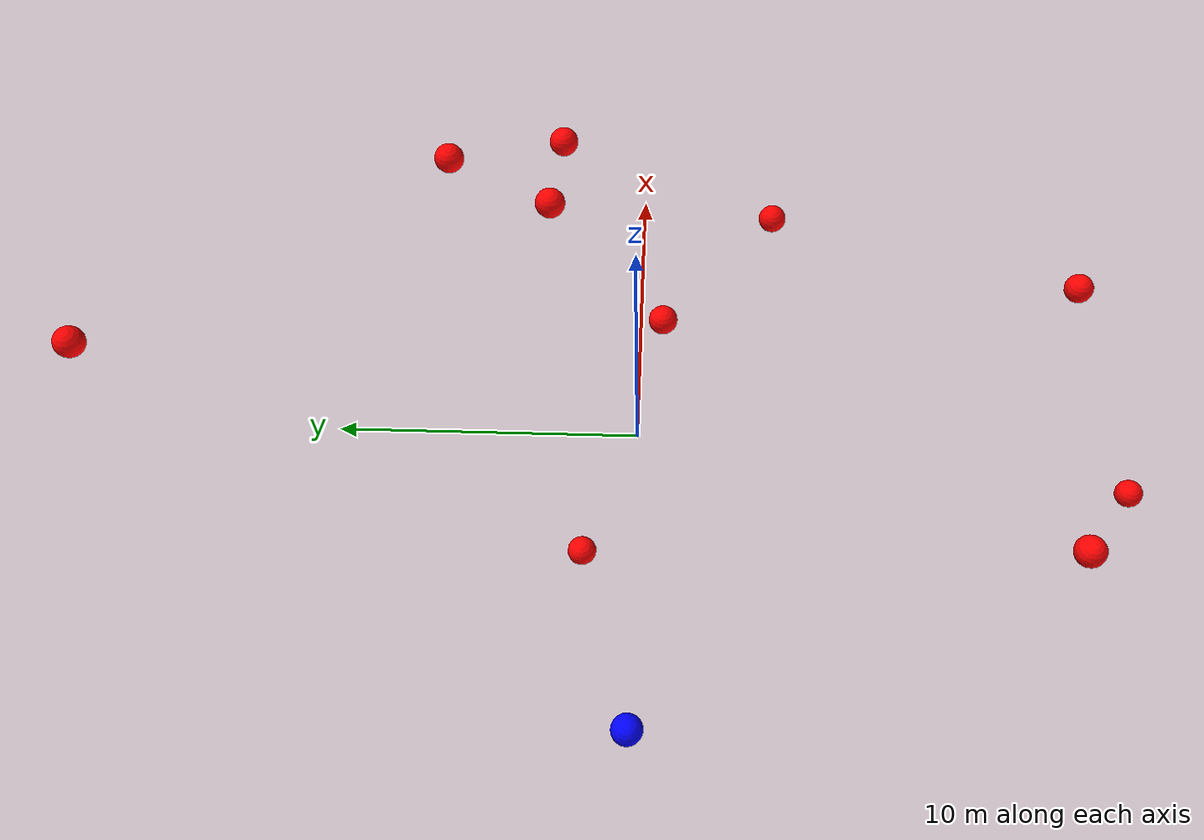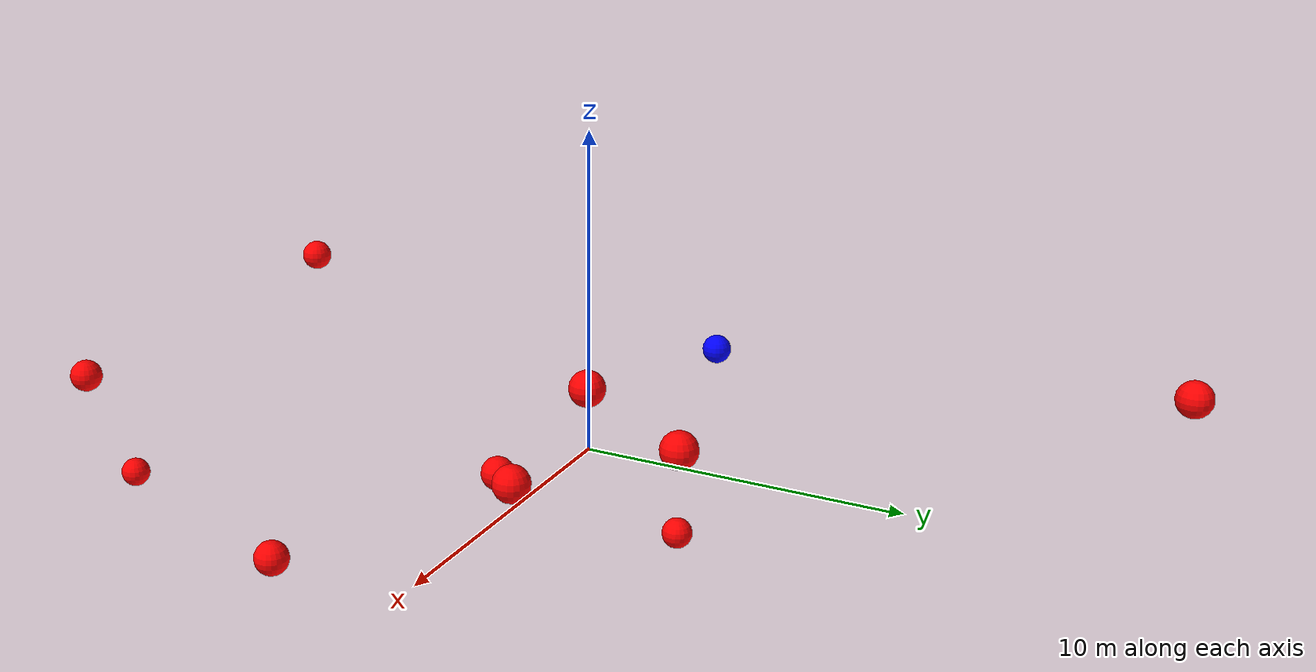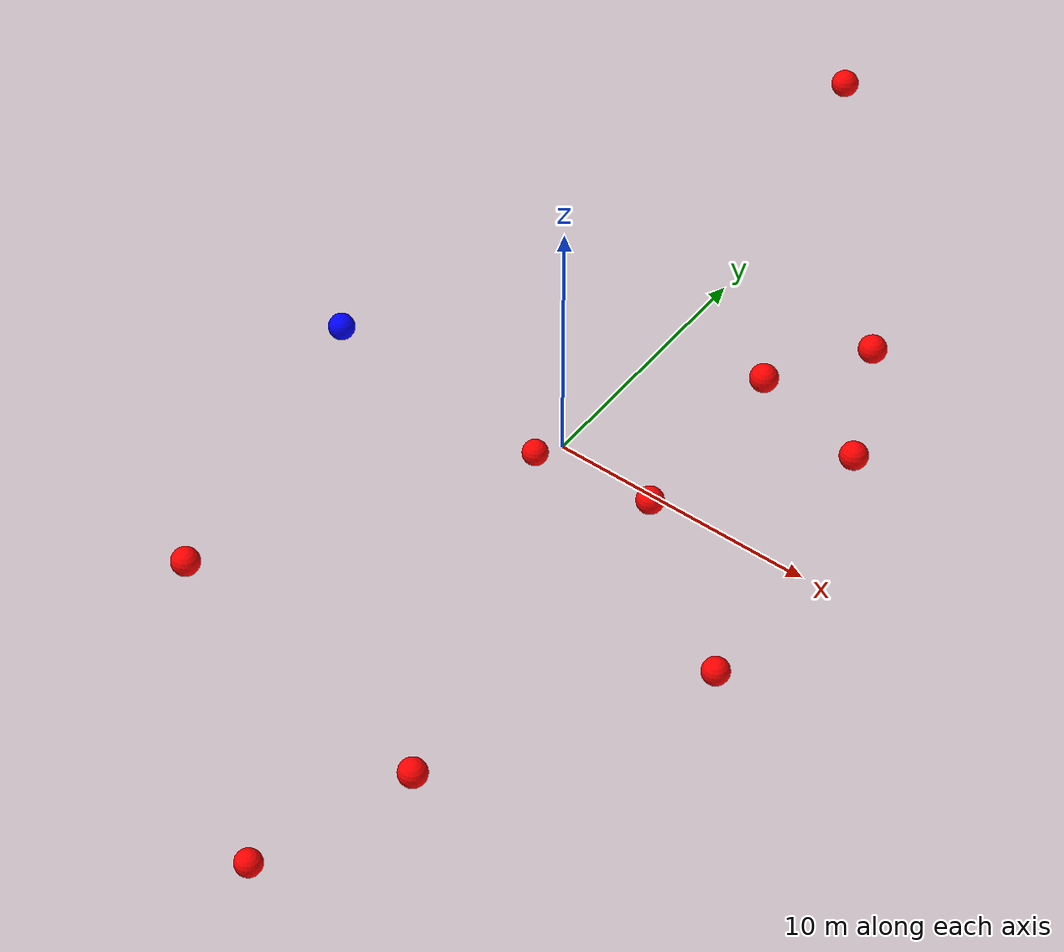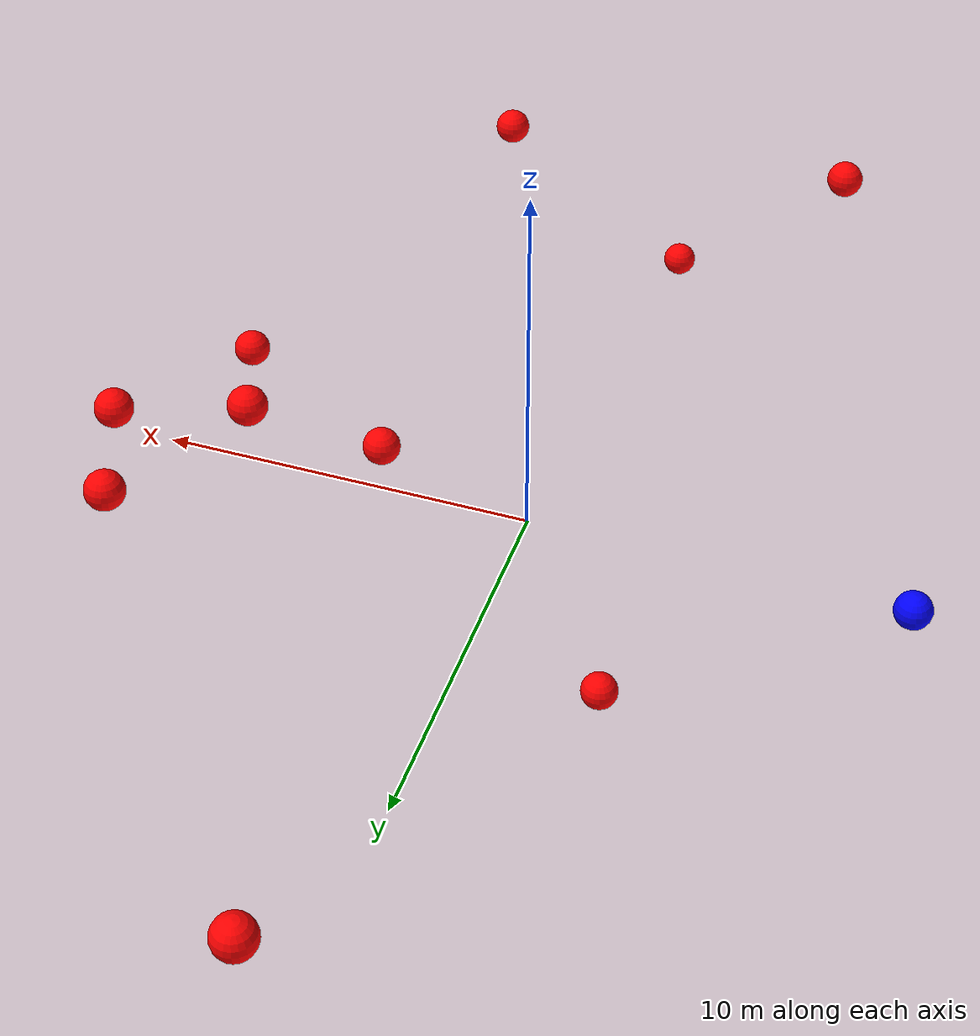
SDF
<?xml version="1.0" ?>
<sdf version="1.8">
    <world name="3d_world">
        <physics name="1ms" type="ode">
            <max_step_size>0.001</max_step_size>
            <real_time_factor>1.0</real_time_factor>
            <real_time_update_rate>1000.0</real_time_update_rate>
        </physics>
        <gravity>0 0 0</gravity>

        <plugin
            filename="gz-sim-physics-system"
            name="gz::sim::v8::systems::Physics">
        </plugin>
        <plugin
            filename="libignition-gazebo-user-commands-system.so"
            name="ignition::gazebo::systems::UserCommands">
        </plugin>
        <plugin
            filename="gz-sim-scene-broadcaster-system"
            name="gz::sim::systems::SceneBroadcaster">
        </plugin>
        <plugin
            filename="gz-sim-sensors-system"
            name="gz::sim::systems::Sensors">
            <render_engine>ogre2</render_engine>
        </plugin>

        <light type="directional" name="sun">
            <cast_shadows>true</cast_shadows>
            <pose>0 0 10 0 0 0</pose>
            <diffuse>0.8 0.8 0.8 1</diffuse>
            <specular>0.2 0.2 0.2 1</specular>
            <attenuation>
                <range>1000</range>
                <constant>0.9</constant>
                <linear>0.01</linear>
                <quadratic>0.001</quadratic>
            </attenuation>
            <direction>-0.5 0.1 -0.9</direction>
        </light>

        <!-- AGENTE -->
        <model name='agente' canonical_link='chassis'>
            <pose relative_to='world'>-10.0 0 0.0 0 0 0</pose>
            <link name='chassis'>
                <pose relative_to='__model__'>0.0 0 0.0 0 0 0</pose>
                <inertial>
                    <mass>1.14395</mass>
                    <inertia>
                        <ixx>0.095329</ixx>
                        <ixy>0</ixy>
                        <ixz>0</ixz>
                        <iyy>0.381317</iyy>
                        <iyz>0</iyz>
                        <izz>0.476646</izz>
                    </inertia>
                </inertial>
                <visual name='visual'>
                    <geometry>
                        <sphere>
                            <radius>0.5</radius>
                        </sphere>
                    </geometry>
                    <material>
                        <ambient>0.0 0.0 1.0 1</ambient>
                        <diffuse>0.0 0.0 1.0 1</diffuse>
                        <specular>0.0 0.0 1.0 1</specular>
                    </material>
                </visual>
                <collision name='collision'>
                    <geometry>
                        <sphere>
                            <radius>0.5</radius>
                        </sphere>
                    </geometry>
                </collision>
                <enable_gravity>false</enable_gravity>
            </link>

            <link name='lidar_link'>
                <pose relative_to='chassis'>0.0 0 0.1 0 0 0</pose>
                <inertial>
                    <mass>0.1</mass>
                    <inertia>
                        <ixx>0.000166667</ixx>
                        <iyy>0.000166667</iyy>
                        <izz>0.000166667</izz>
                    </inertia>
                </inertial>
                <collision name='collision'>
                    <geometry>
                        <cylinder>
                            <radius>0.05</radius>
                            <length>0.1</length>
                        </cylinder>
                    </geometry>
                </collision>
                <visual name='visual'>
                    <geometry>
                        <cylinder>
                            <radius>0.05</radius>
                            <length>0.1</length>
                        </cylinder>
                    </geometry>
                    <material>
                        <ambient>0.0 1.0 0.0 1</ambient>
                        <diffuse>0.0 1.0 0.0 1</diffuse>
                        <specular>0.0 1.0 0.0 1</specular>
                    </material>
                </visual>
                <sensor name="lidar" type="gpu_lidar">
                    <topic>scan</topic>
                    <update_rate>10</update_rate>
                    <lidar>
                        <scan>
                            <horizontal>
                                <samples>5000</samples>
                                <resolution>1</resolution>
                                <min_angle>-3.14159</min_angle>
                                <max_angle>3.14159</max_angle>
                            </horizontal>
                        </scan>
                        <range>
                            <min>0.1</min>
                            <max>10.0</max>
                            <resolution>0.01</resolution>
                        </range>
                    </lidar>
                    <visualize>true</visualize>
                    <always_on>true</always_on>
                    <update_rate>10</update_rate>
                    <pose_frame>lidar</pose_frame>
                </sensor>
                <enable_gravity>false</enable_gravity>
            </link>

            <joint name="lidar_joint" type="fixed">
                <parent>chassis</parent>
                <child>lidar_link</child>
            </joint>

            <plugin
                filename="ignition-gazebo-joint-state-publisher-system"
                name="ignition::gazebo::systems::JointStatePublisher">
            </plugin>
            <plugin
                filename="ignition-gazebo-odometry-publisher-system"
                name="ignition::gazebo::systems::OdometryPublisher">
                <dimensions>3</dimensions>
            </plugin>
            <plugin
                filename="ignition-gazebo-velocity-control-system"
                name="ignition::gazebo::systems::VelocityControl">
                <initial_linear>0.0 0 0</initial_linear>
                <initial_angular>0 0 0.0</initial_angular>
            </plugin>
            <plugin
                filename="libignition-gazebo-pose-publisher-system.so"
                name="ignition::gazebo::systems::PosePublisher">
                <topic>/agente/pose</topic>
                <frame_id>agente</frame_id>
                <update_rate>30</update_rate>
            </plugin>
        </model>

        <!-- OBSTACLE 1 -->
        <model name='obstacle_1' canonical_link='obstacle'>
            <static>false</static>
            <pose relative_to='world'>4.27 -0.76 0.75 0 0 0</pose>
            <link name='obstacle'>
                <pose relative_to='__model__'>0.0 0 0.0 0 0 0</pose>
                <visual name='visual'>
                    <geometry>
                        <sphere>
                            <radius>0.50</radius>
                        </sphere>
                    </geometry>
                    <material>
                        <ambient>1.0 0.0 0.0 1</ambient>
                        <diffuse>1.0 0.0 0.0 1</diffuse>
                        <specular>1.0 0.0 0.0 1</specular>
                    </material>
                </visual>
                <collision name='collision'>
                    <geometry>
                        <sphere>
                            <radius>0.50</radius>
                        </sphere>
                    </geometry>
                </collision>
                <enable_gravity>false</enable_gravity>
            </link>

            <plugin
                filename="ignition-gazebo-velocity-control-system"
                name="ignition::gazebo::systems::VelocityControl">
                <initial_linear>-1.52 0.21 -0.21</initial_linear>
                <initial_angular>0 0 0</initial_angular>
            </plugin>

            <plugin
                filename="ignition-gazebo-odometry-publisher-system"
                name="ignition::gazebo::systems::OdometryPublisher">
                <dimensions>3</dimensions>
            </plugin>
        </model>

        <!-- OBSTACLE 2 -->
        <model name='obstacle_2' canonical_link='obstacle'>
            <static>false</static>
            <pose relative_to='world'>6.10 3.05 4.70 0 0 0</pose>
            <link name='obstacle'>
                <pose relative_to='__model__'>0.0 0 0.0 0 0 0</pose>
                <visual name='visual'>
                    <geometry>
                        <sphere>
                            <radius>0.50</radius>
                        </sphere>
                    </geometry>
                    <material>
                        <ambient>1.0 0.0 0.0 1</ambient>
                        <diffuse>1.0 0.0 0.0 1</diffuse>
                        <specular>1.0 0.0 0.0 1</specular>
                    </material>
                </visual>
                <collision name='collision'>
                    <geometry>
                        <sphere>
                            <radius>0.50</radius>
                        </sphere>
                    </geometry>
                </collision>
                <enable_gravity>false</enable_gravity>
            </link>

            <plugin
                filename="ignition-gazebo-velocity-control-system"
                name="ignition::gazebo::systems::VelocityControl">
                <initial_linear>-1.58 -0.67 -1.02</initial_linear>
                <initial_angular>0 0 0</initial_angular>
            </plugin>

            <plugin
                filename="ignition-gazebo-odometry-publisher-system"
                name="ignition::gazebo::systems::OdometryPublisher">
                <dimensions>3</dimensions>
            </plugin>
        </model>

        <!-- OBSTACLE 3 -->
        <model name='obstacle_3' canonical_link='obstacle'>
            <static>false</static>
            <pose relative_to='world'>-2.60 1.87 -3.56 0 0 0</pose>
            <link name='obstacle'>
                <pose relative_to='__model__'>0.0 0 0.0 0 0 0</pose>
                <visual name='visual'>
                    <geometry>
                        <sphere>
                            <radius>0.50</radius>
                        </sphere>
                    </geometry>
                    <material>
                        <ambient>1.0 0.0 0.0 1</ambient>
                        <diffuse>1.0 0.0 0.0 1</diffuse>
                        <specular>1.0 0.0 0.0 1</specular>
                    </material>
                </visual>
                <collision name='collision'>
                    <geometry>
                        <sphere>
                            <radius>0.50</radius>
                        </sphere>
                    </geometry>
                </collision>
                <enable_gravity>false</enable_gravity>
            </link>

            <plugin
                filename="ignition-gazebo-velocity-control-system"
                name="ignition::gazebo::systems::VelocityControl">
                <initial_linear>1.43 -0.27 0.52</initial_linear>
                <initial_angular>0 0 0</initial_angular>
            </plugin>

            <plugin
                filename="ignition-gazebo-odometry-publisher-system"
                name="ignition::gazebo::systems::OdometryPublisher">
                <dimensions>3</dimensions>
            </plugin>
        </model>

        <!-- OBSTACLE 4 -->
        <model name='obstacle_4' canonical_link='obstacle'>
            <static>false</static>
            <pose relative_to='world'>9.78 -4.75 -0.40 0 0 0</pose>
            <link name='obstacle'>
                <pose relative_to='__model__'>0.0 0 0.0 0 0 0</pose>
                <visual name='visual'>
                    <geometry>
                        <sphere>
                            <radius>0.50</radius>
                        </sphere>
                    </geometry>
                    <material>
                        <ambient>1.0 0.0 0.0 1</ambient>
                        <diffuse>1.0 0.0 0.0 1</diffuse>
                        <specular>1.0 0.0 0.0 1</specular>
                    </material>
                </visual>
                <collision name='collision'>
                    <geometry>
                        <sphere>
                            <radius>0.50</radius>
                        </sphere>
                    </geometry>
                </collision>
                <enable_gravity>false</enable_gravity>
            </link>

            <plugin
                filename="ignition-gazebo-velocity-control-system"
                name="ignition::gazebo::systems::VelocityControl">
                <initial_linear>-1.89 0.66 0.06</initial_linear>
                <initial_angular>0 0 0</initial_angular>
            </plugin>

            <plugin
                filename="ignition-gazebo-odometry-publisher-system"
                name="ignition::gazebo::systems::OdometryPublisher">
                <dimensions>3</dimensions>
            </plugin>
        </model>

        <!-- OBSTACLE 5 -->
        <model name='obstacle_5' canonical_link='obstacle'>
            <static>false</static>
            <pose relative_to='world'>0.54 -17.83 -4.23 0 0 0</pose>
            <link name='obstacle'>
                <pose relative_to='__model__'>0.0 0 0.0 0 0 0</pose>
                <visual name='visual'>
                    <geometry>
                        <sphere>
                            <radius>0.50</radius>
                        </sphere>
                    </geometry>
                    <material>
                        <ambient>1.0 0.0 0.0 1</ambient>
                        <diffuse>1.0 0.0 0.0 1</diffuse>
                        <specular>1.0 0.0 0.0 1</specular>
                    </material>
                </visual>
                <collision name='collision'>
                    <geometry>
                        <sphere>
                            <radius>0.50</radius>
                        </sphere>
                    </geometry>
                </collision>
                <enable_gravity>false</enable_gravity>
            </link>

            <plugin
                filename="ignition-gazebo-velocity-control-system"
                name="ignition::gazebo::systems::VelocityControl">
                <initial_linear>-0.43 1.90 0.45</initial_linear>
                <initial_angular>0 0 0</initial_angular>
            </plugin>

            <plugin
                filename="ignition-gazebo-odometry-publisher-system"
                name="ignition::gazebo::systems::OdometryPublisher">
                <dimensions>3</dimensions>
            </plugin>
        </model>

        <!-- OBSTACLE 6 -->
        <model name='obstacle_6' canonical_link='obstacle'>
            <static>false</static>
            <pose relative_to='world'>5.40 -15.05 1.61 0 0 0</pose>
            <link name='obstacle'>
                <pose relative_to='__model__'>0.0 0 0.0 0 0 0</pose>
                <visual name='visual'>
                    <geometry>
                        <sphere>
                            <radius>0.50</radius>
                        </sphere>
                    </geometry>
                    <material>
                        <ambient>1.0 0.0 0.0 1</ambient>
                        <diffuse>1.0 0.0 0.0 1</diffuse>
                        <specular>1.0 0.0 0.0 1</specular>
                    </material>
                </visual>
                <collision name='collision'>
                    <geometry>
                        <sphere>
                            <radius>0.50</radius>
                        </sphere>
                    </geometry>
                </collision>
                <enable_gravity>false</enable_gravity>
            </link>

            <plugin
                filename="ignition-gazebo-velocity-control-system"
                name="ignition::gazebo::systems::VelocityControl">
                <initial_linear>-1.06 1.69 -0.18</initial_linear>
                <initial_angular>0 0 0</initial_angular>
            </plugin>

            <plugin
                filename="ignition-gazebo-odometry-publisher-system"
                name="ignition::gazebo::systems::OdometryPublisher">
                <dimensions>3</dimensions>
            </plugin>
        </model>

        <!-- OBSTACLE 7 -->
        <model name='obstacle_7' canonical_link='obstacle'>
            <static>false</static>
            <pose relative_to='world'>-5.13 -13.58 2.90 0 0 0</pose>
            <link name='obstacle'>
                <pose relative_to='__model__'>0.0 0 0.0 0 0 0</pose>
                <visual name='visual'>
                    <geometry>
                        <sphere>
                            <radius>0.50</radius>
                        </sphere>
                    </geometry>
                    <material>
                        <ambient>1.0 0.0 0.0 1</ambient>
                        <diffuse>1.0 0.0 0.0 1</diffuse>
                        <specular>1.0 0.0 0.0 1</specular>
                    </material>
                </visual>
                <collision name='collision'>
                    <geometry>
                        <sphere>
                            <radius>0.50</radius>
                        </sphere>
                    </geometry>
                </collision>
                <enable_gravity>false</enable_gravity>
            </link>

            <plugin
                filename="ignition-gazebo-velocity-control-system"
                name="ignition::gazebo::systems::VelocityControl">
                <initial_linear>0.07 1.95 -0.42</initial_linear>
                <initial_angular>0 0 0</initial_angular>
            </plugin>

            <plugin
                filename="ignition-gazebo-odometry-publisher-system"
                name="ignition::gazebo::systems::OdometryPublisher">
                <dimensions>3</dimensions>
            </plugin>
        </model>

        <!-- OBSTACLE 8 -->
        <model name='obstacle_8' canonical_link='obstacle'>
            <static>false</static>
            <pose relative_to='world'>0.08 17.39 4.89 0 0 0</pose>
            <link name='obstacle'>
                <pose relative_to='__model__'>0.0 0 0.0 0 0 0</pose>
                <visual name='visual'>
                    <geometry>
                        <sphere>
                            <radius>0.50</radius>
                        </sphere>
                    </geometry>
                    <material>
                        <ambient>1.0 0.0 0.0 1</ambient>
                        <diffuse>1.0 0.0 0.0 1</diffuse>
                        <specular>1.0 0.0 0.0 1</specular>
                    </material>
                </visual>
                <collision name='collision'>
                    <geometry>
                        <sphere>
                            <radius>0.50</radius>
                        </sphere>
                    </geometry>
                </collision>
                <enable_gravity>false</enable_gravity>
            </link>

            <plugin
                filename="ignition-gazebo-velocity-control-system"
                name="ignition::gazebo::systems::VelocityControl">
                <initial_linear>-0.46 -1.87 -0.53</initial_linear>
                <initial_angular>0 0 0</initial_angular>
            </plugin>

            <plugin
                filename="ignition-gazebo-odometry-publisher-system"
                name="ignition::gazebo::systems::OdometryPublisher">
                <dimensions>3</dimensions>
            </plugin>
        </model>

        <!-- OBSTACLE 9 -->
        <model name='obstacle_9' canonical_link='obstacle'>
            <static>false</static>
            <pose relative_to='world'>9.88 2.88 3.47 0 0 0</pose>
            <link name='obstacle'>
                <pose relative_to='__model__'>0.0 0 0.0 0 0 0</pose>
                <visual name='visual'>
                    <geometry>
                        <sphere>
                            <radius>0.50</radius>
                        </sphere>
                    </geometry>
                    <material>
                        <ambient>1.0 0.0 0.0 1</ambient>
                        <diffuse>1.0 0.0 0.0 1</diffuse>
                        <specular>1.0 0.0 0.0 1</specular>
                    </material>
                </visual>
                <collision name='collision'>
                    <geometry>
                        <sphere>
                            <radius>0.50</radius>
                        </sphere>
                    </geometry>
                </collision>
                <enable_gravity>false</enable_gravity>
            </link>

            <plugin
                filename="ignition-gazebo-velocity-control-system"
                name="ignition::gazebo::systems::VelocityControl">
                <initial_linear>-1.46 -0.57 -0.69</initial_linear>
                <initial_angular>0 0 0</initial_angular>
            </plugin>

            <plugin
                filename="ignition-gazebo-odometry-publisher-system"
                name="ignition::gazebo::systems::OdometryPublisher">
                <dimensions>3</dimensions>
            </plugin>
        </model>

        <!-- OBSTACLE 10 -->
        <model name='obstacle_10' canonical_link='obstacle'>
            <static>false</static>
            <pose relative_to='world'>8.15 6.62 4.45 0 0 0</pose>
            <link name='obstacle'>
                <pose relative_to='__model__'>0.0 0 0.0 0 0 0</pose>
                <visual name='visual'>
                    <geometry>
                        <sphere>
                            <radius>0.50</radius>
                        </sphere>
                    </geometry>
                    <material>
                        <ambient>1.0 0.0 0.0 1</ambient>
                        <diffuse>1.0 0.0 0.0 1</diffuse>
                        <specular>1.0 0.0 0.0 1</specular>
                    </material>
                </visual>
                <collision name='collision'>
                    <geometry>
                        <sphere>
                            <radius>0.50</radius>
                        </sphere>
                    </geometry>
                </collision>
                <enable_gravity>false</enable_gravity>
            </link>

            <plugin
                filename="ignition-gazebo-velocity-control-system"
                name="ignition::gazebo::systems::VelocityControl">
                <initial_linear>-1.20 -1.33 -0.89</initial_linear>
                <initial_angular>0 0 0</initial_angular>
            </plugin>

            <plugin
                filename="ignition-gazebo-odometry-publisher-system"
                name="ignition::gazebo::systems::OdometryPublisher">
                <dimensions>3</dimensions>
            </plugin>
        </model>

    </world>
</sdf>
